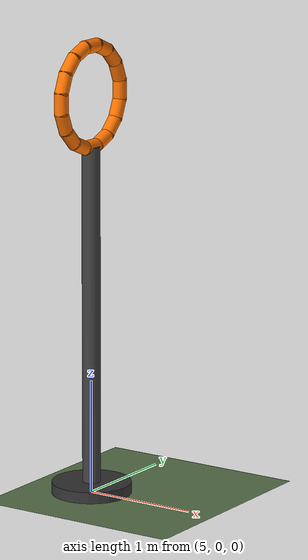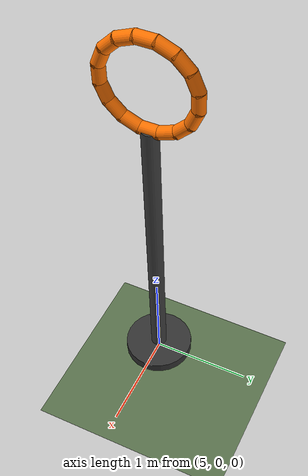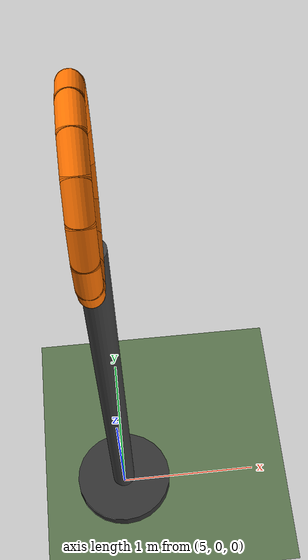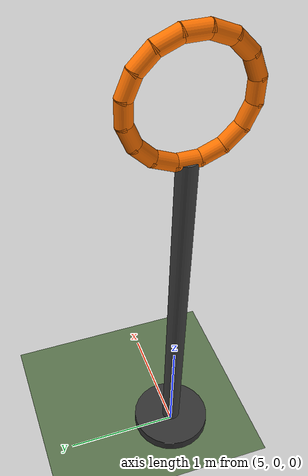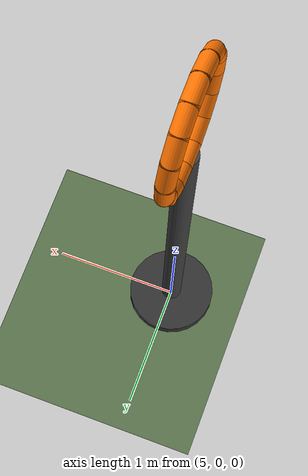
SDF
<sdf version="1.9">
 <world name="gates_course">
  <physics name="1ms" type="ignore">
   <max_step_size>0.001</max_step_size>
   <real_time_factor>1.0</real_time_factor>
  </physics>
  <plugin filename="gz-sim-physics-system" name="gz::sim::systems::Physics"/>
  <plugin filename="gz-sim-sensors-system" name="gz::sim::systems::Sensors">
   <render_engine>ogre2</render_engine>
  </plugin>
  <plugin filename="gz-sim-user-commands-system" name="gz::sim::systems::UserCommands"/>
  <plugin filename="gz-sim-scene-broadcaster-system" name="gz::sim::systems::SceneBroadcaster"/>
  <plugin filename="gz-sim-imu-system" name="gz::sim::systems::Imu"/>
  <plugin filename="gz-sim-navsat-system" name="gz::sim::systems::NavSat"/>
  <scene><ambient>1.0 1.0 1.0</ambient><background>0.8 0.8 0.8</background></scene>
  <spherical_coordinates>
   <latitude_deg>-35.363262</latitude_deg>
   <longitude_deg>149.165237</longitude_deg>
   <elevation>584</elevation>
   <heading_deg>0</heading_deg>
   <surface_model>EARTH_WGS84</surface_model>
  </spherical_coordinates>
  <light type="directional" name="sun">
   <pose>0 0 10 0 0 0</pose>
   <diffuse>0.8 0.8 0.8 1</diffuse>
   <specular>0.8 0.8 0.8 1</specular>
   <attenuation>
    <range>1000</range>
    <constant>0.9</constant>
    <linear>0.01</linear>
    <quadratic>0.001</quadratic>
   </attenuation>
   <direction>-0.5 0.1 -0.9</direction>
  </light>
  <model name="navsat_origin">
   <static>1</static>
   <link name="link">
    <sensor name="navsat_sensor" type="navsat"><always_on>1</always_on><update_rate>1</update_rate></sensor>
   </link>
  </model>
  <model name="ground">
   <static>true</static>
   <link name="link">
    <collision name="collision"><geometry><plane><normal>0 0 1</normal></plane></geometry></collision>
    <visual name="visual">
     <cast_shadows>false</cast_shadows>
     <geometry><plane><normal>0 0 1</normal><size>1000 1000</size></plane></geometry>
     <material>
      <ambient>0.35 0.45 0.30 1</ambient>
      <diffuse>0.35 0.45 0.30 1</diffuse>
      <specular>0.1 0.1 0.1 1</specular>
     </material>
    </visual>
   </link>
  </model>
  <include><name>gate_1</name><uri>model://gate_ring</uri><pose>5 0 3.5 0 0 0</pose></include>
  <model name="stand_1">
   <static>true</static>
   <pose>5 0 0 0 0 0</pose>
   <link name="l">
    <visual name="base">
     <pose>0 0 0.05 0 0 0</pose>
     <geometry><cylinder><radius>0.35</radius><length>0.10</length></cylinder></geometry>
     <material><ambient>0.2 0.2 0.2 1</ambient><diffuse>0.2 0.2 0.2 1</diffuse></material>
    </visual>
    <collision name="base_collision">
     <pose>0 0 0.05 0 0 0</pose>
     <geometry><cylinder><radius>0.35</radius><length>0.10</length></cylinder></geometry>
    </collision>
    <visual name="post">
     <pose>0 0 1.5345 0 0 0</pose>
     <geometry><cylinder><radius>0.08</radius><length>3.069</length></cylinder></geometry>
     <material><ambient>0.25 0.25 0.25 1</ambient><diffuse>0.25 0.25 0.25 1</diffuse></material>
    </visual>
    <collision name="post_collision">
     <pose>0 0 1.5345 0 0 0</pose>
     <geometry><cylinder><radius>0.08</radius><length>3.069</length></cylinder></geometry>
    </collision>
   </link>
  </model>
 </world>
</sdf>

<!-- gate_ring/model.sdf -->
<sdf version="1.9">
  <model name="gate_ring">
    <static>true</static>
    <link name="ring">
      <visual name="seg_0">
        <pose>0 0.4310 0.0000 0.0000 0 0</pose>
        <geometry><cylinder><radius>0.06</radius><length>0.20</length></cylinder></geometry>
        <material><ambient>1 0.45 0 1</ambient><diffuse>1 0.45 0 1</diffuse><emissive>1 0.45 0 1</emissive></material>
      </visual>
      <collision name="seg_0_collision">
        <pose>0 0.4310 0.0000 0.0000 0 0</pose>
        <geometry><cylinder><radius>0.06</radius><length>0.20</length></cylinder></geometry>
      </collision>
      <visual name="seg_1">
        <pose>0 0.3982 0.1649 0.3927 0 0</pose>
        <geometry><cylinder><radius>0.06</radius><length>0.20</length></cylinder></geometry>
        <material><ambient>1 0.45 0 1</ambient><diffuse>1 0.45 0 1</diffuse><emissive>1 0.45 0 1</emissive></material>
      </visual>
      <collision name="seg_1_collision">
        <pose>0 0.3982 0.1649 0.3927 0 0</pose>
        <geometry><cylinder><radius>0.06</radius><length>0.20</length></cylinder></geometry>
      </collision>
      <visual name="seg_2">
        <pose>0 0.3048 0.3048 0.7854 0 0</pose>
        <geometry><cylinder><radius>0.06</radius><length>0.20</length></cylinder></geometry>
        <material><ambient>1 0.45 0 1</ambient><diffuse>1 0.45 0 1</diffuse><emissive>1 0.45 0 1</emissive></material>
      </visual>
      <collision name="seg_2_collision">
        <pose>0 0.3048 0.3048 0.7854 0 0</pose>
        <geometry><cylinder><radius>0.06</radius><length>0.20</length></cylinder></geometry>
      </collision>
      <visual name="seg_3">
        <pose>0 0.1649 0.3982 1.1781 0 0</pose>
        <geometry><cylinder><radius>0.06</radius><length>0.20</length></cylinder></geometry>
        <material><ambient>1 0.45 0 1</ambient><diffuse>1 0.45 0 1</diffuse><emissive>1 0.45 0 1</emissive></material>
      </visual>
      <collision name="seg_3_collision">
        <pose>0 0.1649 0.3982 1.1781 0 0</pose>
        <geometry><cylinder><radius>0.06</radius><length>0.20</length></cylinder></geometry>
      </collision>
      <visual name="seg_4">
        <pose>0 0.0000 0.4310 1.5708 0 0</pose>
        <geometry><cylinder><radius>0.06</radius><length>0.20</length></cylinder></geometry>
        <material><ambient>1 0.45 0 1</ambient><diffuse>1 0.45 0 1</diffuse><emissive>1 0.45 0 1</emissive></material>
      </visual>
      <collision name="seg_4_collision">
        <pose>0 0.0000 0.4310 1.5708 0 0</pose>
        <geometry><cylinder><radius>0.06</radius><length>0.20</length></cylinder></geometry>
      </collision>
      <visual name="seg_5">
        <pose>0 -0.1649 0.3982 1.9635 0 0</pose>
        <geometry><cylinder><radius>0.06</radius><length>0.20</length></cylinder></geometry>
        <material><ambient>1 0.45 0 1</ambient><diffuse>1 0.45 0 1</diffuse><emissive>1 0.45 0 1</emissive></material>
      </visual>
      <collision name="seg_5_collision">
        <pose>0 -0.1649 0.3982 1.9635 0 0</pose>
        <geometry><cylinder><radius>0.06</radius><length>0.20</length></cylinder></geometry>
      </collision>
      <visual name="seg_6">
        <pose>0 -0.3048 0.3048 2.3562 0 0</pose>
        <geometry><cylinder><radius>0.06</radius><length>0.20</length></cylinder></geometry>
        <material><ambient>1 0.45 0 1</ambient><diffuse>1 0.45 0 1</diffuse><emissive>1 0.45 0 1</emissive></material>
      </visual>
      <collision name="seg_6_collision">
        <pose>0 -0.3048 0.3048 2.3562 0 0</pose>
        <geometry><cylinder><radius>0.06</radius><length>0.20</length></cylinder></geometry>
      </collision>
      <visual name="seg_7">
        <pose>0 -0.3982 0.1649 2.7489 0 0</pose>
        <geometry><cylinder><radius>0.06</radius><length>0.20</length></cylinder></geometry>
        <material><ambient>1 0.45 0 1</ambient><diffuse>1 0.45 0 1</diffuse><emissive>1 0.45 0 1</emissive></material>
      </visual>
      <collision name="seg_7_collision">
        <pose>0 -0.3982 0.1649 2.7489 0 0</pose>
        <geometry><cylinder><radius>0.06</radius><length>0.20</length></cylinder></geometry>
      </collision>
      <visual name="seg_8">
        <pose>0 -0.4310 0.0000 3.1416 0 0</pose>
        <geometry><cylinder><radius>0.06</radius><length>0.20</length></cylinder></geometry>
        <material><ambient>1 0.45 0 1</ambient><diffuse>1 0.45 0 1</diffuse><emissive>1 0.45 0 1</emissive></material>
      </visual>
      <collision name="seg_8_collision">
        <pose>0 -0.4310 0.0000 3.1416 0 0</pose>
        <geometry><cylinder><radius>0.06</radius><length>0.20</length></cylinder></geometry>
      </collision>
      <visual name="seg_9">
        <pose>0 -0.3982 -0.1649 3.5343 0 0</pose>
        <geometry><cylinder><radius>0.06</radius><length>0.20</length></cylinder></geometry>
        <material><ambient>1 0.45 0 1</ambient><diffuse>1 0.45 0 1</diffuse><emissive>1 0.45 0 1</emissive></material>
      </visual>
      <collision name="seg_9_collision">
        <pose>0 -0.3982 -0.1649 3.5343 0 0</pose>
        <geometry><cylinder><radius>0.06</radius><length>0.20</length></cylinder></geometry>
      </collision>
      <visual name="seg_10">
        <pose>0 -0.3048 -0.3048 3.9270 0 0</pose>
        <geometry><cylinder><radius>0.06</radius><length>0.20</length></cylinder></geometry>
        <material><ambient>1 0.45 0 1</ambient><diffuse>1 0.45 0 1</diffuse><emissive>1 0.45 0 1</emissive></material>
      </visual>
      <collision name="seg_10_collision">
        <pose>0 -0.3048 -0.3048 3.9270 0 0</pose>
        <geometry><cylinder><radius>0.06</radius><length>0.20</length></cylinder></geometry>
      </collision>
      <visual name="seg_11">
        <pose>0 -0.1649 -0.3982 4.3197 0 0</pose>
        <geometry><cylinder><radius>0.06</radius><length>0.20</length></cylinder></geometry>
        <material><ambient>1 0.45 0 1</ambient><diffuse>1 0.45 0 1</diffuse><emissive>1 0.45 0 1</emissive></material>
      </visual>
      <collision name="seg_11_collision">
        <pose>0 -0.1649 -0.3982 4.3197 0 0</pose>
        <geometry><cylinder><radius>0.06</radius><length>0.20</length></cylinder></geometry>
      </collision>
      <visual name="seg_12">
        <pose>0 -0.0000 -0.4310 4.7124 0 0</pose>
        <geometry><cylinder><radius>0.06</radius><length>0.20</length></cylinder></geometry>
        <material><ambient>1 0.45 0 1</ambient><diffuse>1 0.45 0 1</diffuse><emissive>1 0.45 0 1</emissive></material>
      </visual>
      <collision name="seg_12_collision">
        <pose>0 -0.0000 -0.4310 4.7124 0 0</pose>
        <geometry><cylinder><radius>0.06</radius><length>0.20</length></cylinder></geometry>
      </collision>
      <visual name="seg_13">
        <pose>0 0.1649 -0.3982 5.1051 0 0</pose>
        <geometry><cylinder><radius>0.06</radius><length>0.20</length></cylinder></geometry>
        <material><ambient>1 0.45 0 1</ambient><diffuse>1 0.45 0 1</diffuse><emissive>1 0.45 0 1</emissive></material>
      </visual>
      <collision name="seg_13_collision">
        <pose>0 0.1649 -0.3982 5.1051 0 0</pose>
        <geometry><cylinder><radius>0.06</radius><length>0.20</length></cylinder></geometry>
      </collision>
      <visual name="seg_14">
        <pose>0 0.3048 -0.3048 5.4978 0 0</pose>
        <geometry><cylinder><radius>0.06</radius><length>0.20</length></cylinder></geometry>
        <material><ambient>1 0.45 0 1</ambient><diffuse>1 0.45 0 1</diffuse><emissive>1 0.45 0 1</emissive></material>
      </visual>
      <collision name="seg_14_collision">
        <pose>0 0.3048 -0.3048 5.4978 0 0</pose>
        <geometry><cylinder><radius>0.06</radius><length>0.20</length></cylinder></geometry>
      </collision>
      <visual name="seg_15">
        <pose>0 0.3982 -0.1649 5.8905 0 0</pose>
        <geometry><cylinder><radius>0.06</radius><length>0.20</length></cylinder></geometry>
        <material><ambient>1 0.45 0 1</ambient><diffuse>1 0.45 0 1</diffuse><emissive>1 0.45 0 1</emissive></material>
      </visual>
      <collision name="seg_15_collision">
        <pose>0 0.3982 -0.1649 5.8905 0 0</pose>
        <geometry><cylinder><radius>0.06</radius><length>0.20</length></cylinder></geometry>
      </collision>
    </link>
  </model>
</sdf>
